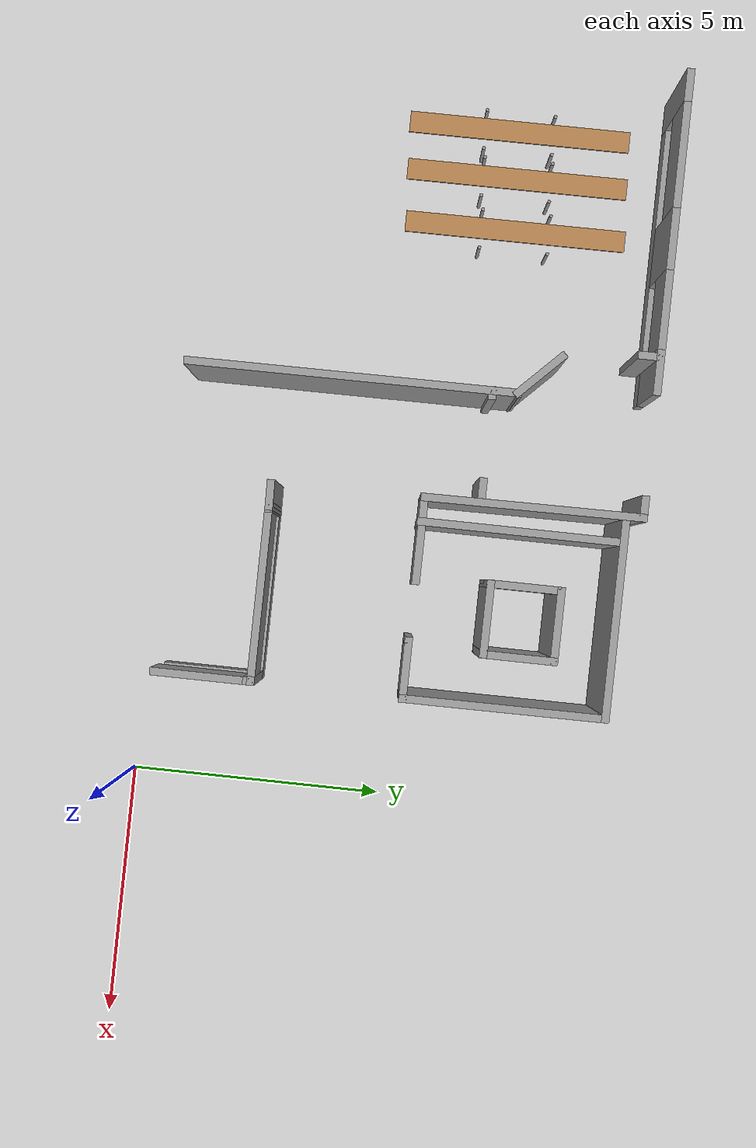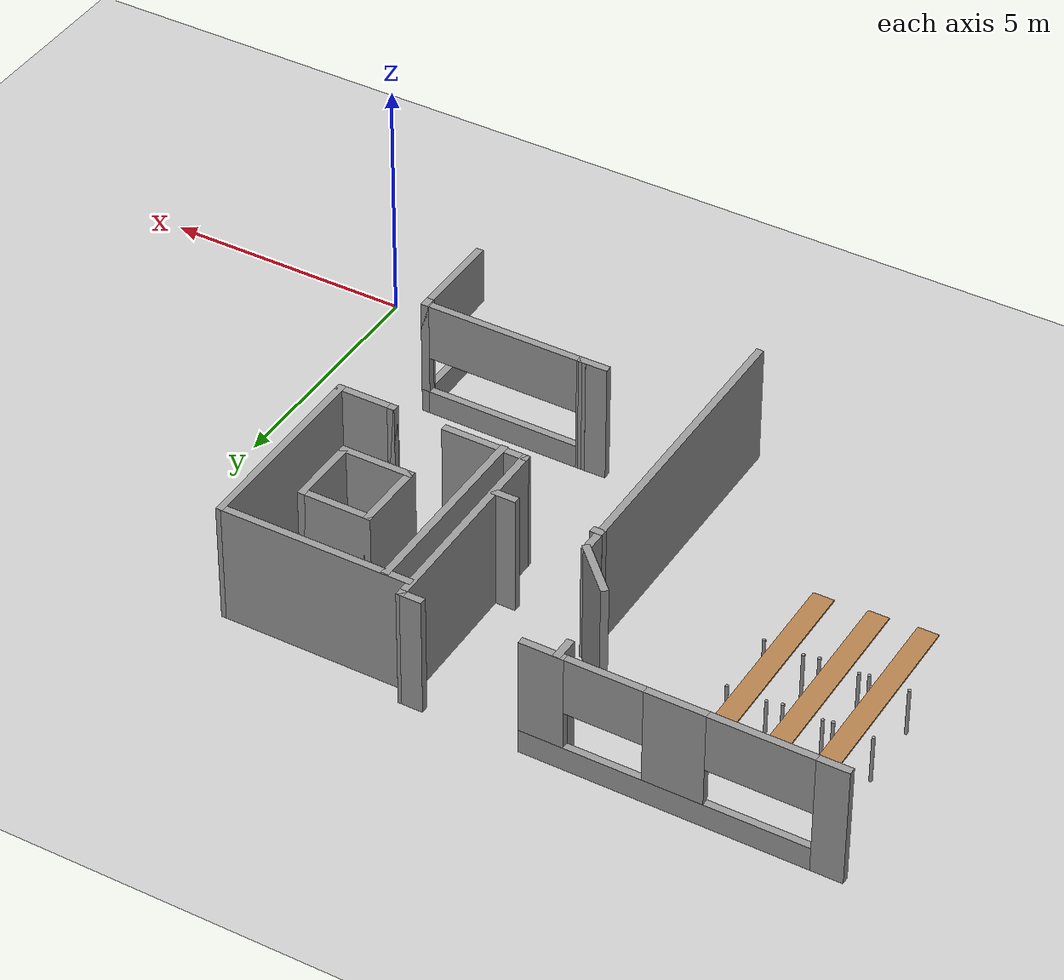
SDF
<sdf version="1.6">
 <world name="default">
  <model name="ground_plane">
   <static>1</static>
   <link name="link">
    <collision name="collision">
     <geometry><plane><normal>0 0 1</normal><size>100 100</size></plane></geometry>
     <surface><friction><ode><mu>100</mu><mu2>50</mu2></ode></friction></surface>
    </collision>
    <visual name="visual">
     <cast_shadows>0</cast_shadows>
     <geometry><plane><normal>0 0 1</normal><size>100 100</size></plane></geometry>
     <material>
      <script><uri>file://media/materials/scripts/gazebo.material</uri><name>Gazebo/Grey</name></script>
     </material>
    </visual>
   </link>
  </model>
  <model name="ca_vignal_1">
   <pose>-8.21048 -6.13752 0 0 -0 0</pose>
   <link name="Wall_18">
    <collision name="Wall_18_Collision">
     <geometry><box><size>0.5 0.15 2.5</size></box></geometry>
     <pose>0 0 1.25 0 -0 0</pose>
    </collision>
    <visual name="Wall_18_Visual">
     <pose>0 0 1.25 0 -0 0</pose>
     <geometry><box><size>0.5 0.15 2.5</size></box></geometry>
     <material>
      <script><uri>file://media/materials/scripts/gazebo.material</uri><name>Gazebo/Grey</name></script>
      <ambient>1 1 1 1</ambient>
     </material>
    </visual>
    <pose>1.99078 15.6193 0 0 -0 0</pose>
   </link>
   <link name="Wall_19">
    <collision name="Wall_19_Collision">
     <geometry><box><size>4.33031 0.15 2.5</size></box></geometry>
     <pose>0 0 1.25 0 -0 0</pose>
    </collision>
    <visual name="Wall_19_Visual">
     <pose>0 0 1.25 0 -0 0</pose>
     <geometry><box><size>4.33031 0.15 2.5</size></box></geometry>
     <material>
      <script><uri>file://media/materials/scripts/gazebo.material</uri><name>Gazebo/Grey</name></script>
      <ambient>1 1 1 1</ambient>
     </material>
    </visual>
    <pose>2.1855 13.5292 0 0 0 -1.56136</pose>
   </link>
   <link name="Wall_2">
    <pose>-3.30164 15.6245 0 0 -0 0</pose>
    <visual name="Wall_2_Visual_0">
     <pose>-2.81084 0 1.25 0 -0 0</pose>
     <geometry><box><size>0.628319 0.15 2.5</size></box></geometry>
     <material>
      <script><uri>file://media/materials/scripts/gazebo.material</uri><name>Gazebo/Grey</name></script>
      <ambient>1 1 1 1</ambient>
     </material>
    </visual>
    <collision name="Wall_2_Collision_0">
     <geometry><box><size>0.628319 0.15 2.5</size></box></geometry>
     <pose>-2.81084 0 1.25 0 -0 0</pose>
    </collision>
    <visual name="Wall_2_Visual_1">
     <pose>0.31416 0 0.25 0 -0 0</pose>
     <geometry><box><size>5.62168 0.15 0.5</size></box></geometry>
     <material>
      <script><uri>file://media/materials/scripts/gazebo.material</uri><name>Gazebo/Grey</name></script>
      <ambient>1 1 1 1</ambient>
     </material>
    </visual>
    <collision name="Wall_2_Collision_1">
     <geometry><box><size>5.62168 0.15 0.5</size></box></geometry>
     <pose>0.31416 0 0.25 0 -0 0</pose>
    </collision>
    <visual name="Wall_2_Visual_2">
     <pose>0.127976 0 1.5 0 -0 0</pose>
     <geometry><box><size>1.18537 0.15 2</size></box></geometry>
     <material>
      <script><uri>file://media/materials/scripts/gazebo.material</uri><name>Gazebo/Grey</name></script>
      <ambient>1 1 1 1</ambient>
     </material>
    </visual>
    <collision name="Wall_2_Collision_2">
     <geometry><box><size>1.18537 0.15 2</size></box></geometry>
     <pose>0.127976 0 1.5 0 -0 0</pose>
    </collision>
    <visual name="Wall_2_Visual_3">
     <pose>2.68462 0 1.5 0 -0 0</pose>
     <geometry><box><size>0.880764 0.15 2</size></box></geometry>
     <material>
      <script><uri>file://media/materials/scripts/gazebo.material</uri><name>Gazebo/Grey</name></script>
      <ambient>1 1 1 1</ambient>
     </material>
    </visual>
    <collision name="Wall_2_Collision_3">
     <geometry><box><size>0.880764 0.15 2</size></box></geometry>
     <pose>2.68462 0 1.5 0 -0 0</pose>
    </collision>
    <visual name="Wall_2_Visual_4">
     <pose>-1.4807 0 1.9 0 -0 0</pose>
     <geometry><box><size>2.03197 0.15 1.2</size></box></geometry>
     <material>
      <script><uri>file://media/materials/scripts/gazebo.material</uri><name>Gazebo/Grey</name></script>
      <ambient>1 1 1 1</ambient>
     </material>
    </visual>
    <collision name="Wall_2_Collision_4">
     <geometry><box><size>2.03197 0.15 1.2</size></box></geometry>
     <pose>-1.4807 0 1.9 0 -0 0</pose>
    </collision>
    <visual name="Wall_2_Visual_5">
     <pose>1.48245 0 1.9 0 -0 0</pose>
     <geometry><box><size>1.52357 0.15 1.2</size></box></geometry>
     <material>
      <script><uri>file://media/materials/scripts/gazebo.material</uri><name>Gazebo/Grey</name></script>
      <ambient>1 1 1 1</ambient>
     </material>
    </visual>
    <collision name="Wall_2_Collision_5">
     <geometry><box><size>1.52357 0.15 1.2</size></box></geometry>
     <pose>1.48245 0 1.9 0 -0 0</pose>
    </collision>
   </link>
   <link name="Wall_20">
    <collision name="Wall_20_Collision">
     <geometry><box><size>1.75 0.15 2.5</size></box></geometry>
     <pose>0 0 1.25 0 -0 0</pose>
    </collision>
    <visual name="Wall_20_Visual">
     <pose>0 0 1.25 0 -0 0</pose>
     <geometry><box><size>1.75 0.15 2.5</size></box></geometry>
     <material>
      <script><uri>file://media/materials/scripts/gazebo.material</uri><name>Gazebo/Grey</name></script>
      <ambient>1 1 1 1</ambient>
     </material>
    </visual>
    <pose>3.00523 11.4392 0 0 -0 0</pose>
   </link>
   <link name="Wall_22">
    <collision name="Wall_22_Collision">
     <geometry><box><size>4 0.15 2.5</size></box></geometry>
     <pose>0 0 1.25 0 -0 0</pose>
    </collision>
    <visual name="Wall_22_Visual">
     <pose>0 0 1.25 0 -0 0</pose>
     <geometry><box><size>4 0.15 2.5</size></box></geometry>
     <material>
      <script><uri>file://media/materials/scripts/gazebo.material</uri><name>Gazebo/Grey</name></script>
      <ambient>1 1 1 1</ambient>
     </material>
    </visual>
    <pose>4.12078 15.2971 0 0 -0 0</pose>
   </link>
   <link name="Wall_23">
    <collision name="Wall_23_Collision">
     <geometry><box><size>4.02639 0.15 2.5</size></box></geometry>
     <pose>0 0 1.25 0 -0 0</pose>
    </collision>
    <visual name="Wall_23_Visual">
     <pose>0 0 1.25 0 -0 0</pose>
     <geometry><box><size>4.02639 0.15 2.5</size></box></geometry>
     <material>
      <script><uri>file://media/materials/scripts/gazebo.material</uri><name>Gazebo/Grey</name></script>
      <ambient>1 1 1 1</ambient>
     </material>
    </visual>
    <pose>6.05235 13.359 0 0 0 -1.5674</pose>
   </link>
   <link name="Wall_24">
    <collision name="Wall_24_Collision">
     <geometry><box><size>1.25 0.15 2.5</size></box></geometry>
     <pose>0 0 1.25 0 -0 0</pose>
    </collision>
    <visual name="Wall_24_Visual">
     <pose>0 0 1.25 0 -0 0</pose>
     <geometry><box><size>1.25 0.15 2.5</size></box></geometry>
     <material>
      <script><uri>file://media/materials/scripts/gazebo.material</uri><name>Gazebo/Grey</name></script>
      <ambient>1 1 1 1</ambient>
     </material>
    </visual>
    <pose>5.50893 11.4208 0 0 -0 3.14159</pose>
   </link>
   <link name="Wall_25">
    <collision name="Wall_25_Collision">
     <geometry><box><size>0.15 0.15 2.5</size></box></geometry>
     <pose>0 0 1.25 0 -0 0</pose>
    </collision>
    <visual name="Wall_25_Visual">
     <pose>0 0 1.25 0 -0 0</pose>
     <geometry><box><size>0.15 0.15 2.5</size></box></geometry>
     <material>
      <script><uri>file://media/materials/scripts/gazebo.material</uri><name>Gazebo/Grey</name></script>
      <ambient>1 1 1 1</ambient>
     </material>
    </visual>
    <pose>4.95893 11.4208 0 0 -0 0</pose>
   </link>
   <link name="Wall_27">
    <collision name="Wall_27_Collision">
     <geometry><box><size>0.5 0.15 2.5</size></box></geometry>
     <pose>0 0 1.25 0 -0 0</pose>
    </collision>
    <visual name="Wall_27_Visual">
     <pose>0 0 1.25 0 -0 0</pose>
     <geometry><box><size>0.5 0.15 2.5</size></box></geometry>
     <material>
      <script><uri>file://media/materials/scripts/gazebo.material</uri><name>Gazebo/Grey</name></script>
      <ambient>1 1 1 1</ambient>
     </material>
    </visual>
    <pose>1.97078 12.5171 0 0 -0 0</pose>
   </link>
   <link name="Wall_30">
    <collision name="Wall_30_Collision">
     <geometry><box><size>4 0.15 2.5</size></box></geometry>
     <pose>0 0 1.25 0 -0 0</pose>
    </collision>
    <visual name="Wall_30_Visual">
     <pose>0 0 1.25 0 -0 0</pose>
     <geometry><box><size>4 0.15 2.5</size></box></geometry>
     <material>
      <script><uri>file://media/materials/scripts/gazebo.material</uri><name>Gazebo/Grey</name></script>
      <ambient>1 1 1 1</ambient>
     </material>
    </visual>
    <pose>2.67311 13.3434 0 0 0 -1.5708</pose>
   </link>
   <link name="Wall_35">
    <collision name="Wall_35_Collision">
     <geometry><box><size>1.5 0.15 2.5</size></box></geometry>
     <pose>0 0 1.25 0 -0 0</pose>
    </collision>
    <visual name="Wall_35_Visual">
     <pose>0 0 1.25 0 -0 0</pose>
     <geometry><box><size>1.5 0.15 2.5</size></box></geometry>
     <material>
      <script><uri>file://media/materials/scripts/gazebo.material</uri><name>Gazebo/Grey</name></script>
      <ambient>1 1 1 1</ambient>
     </material>
    </visual>
    <pose>4.38699 12.8619 0 0 -0 0</pose>
   </link>
   <link name="Wall_36">
    <collision name="Wall_36_Collision">
     <geometry><box><size>1.5 0.15 2.5</size></box></geometry>
     <pose>0 0 1.25 0 -0 0</pose>
    </collision>
    <visual name="Wall_36_Visual">
     <pose>0 0 1.25 0 -0 0</pose>
     <geometry><box><size>1.5 0.15 2.5</size></box></geometry>
     <material>
      <script><uri>file://media/materials/scripts/gazebo.material</uri><name>Gazebo/Grey</name></script>
      <ambient>1 1 1 1</ambient>
     </material>
    </visual>
    <pose>5.06198 13.5369 0 0 -0 1.5708</pose>
   </link>
   <link name="Wall_37">
    <collision name="Wall_37_Collision">
     <geometry><box><size>1.5 0.15 2.5</size></box></geometry>
     <pose>0 0 1.25 0 -0 0</pose>
    </collision>
    <visual name="Wall_37_Visual">
     <pose>0 0 1.25 0 -0 0</pose>
     <geometry><box><size>1.5 0.15 2.5</size></box></geometry>
     <material>
      <script><uri>file://media/materials/scripts/gazebo.material</uri><name>Gazebo/Grey</name></script>
      <ambient>1 1 1 1</ambient>
     </material>
    </visual>
    <pose>4.38699 14.2119 0 0 -0 3.14159</pose>
   </link>
   <link name="Wall_38">
    <collision name="Wall_38_Collision">
     <geometry><box><size>1.5 0.15 2.5</size></box></geometry>
     <pose>0 0 1.25 0 -0 0</pose>
    </collision>
    <visual name="Wall_38_Visual">
     <pose>0 0 1.25 0 -0 0</pose>
     <geometry><box><size>1.5 0.15 2.5</size></box></geometry>
     <material>
      <script><uri>file://media/materials/scripts/gazebo.material</uri><name>Gazebo/Grey</name></script>
      <ambient>1 1 1 1</ambient>
     </material>
    </visual>
    <pose>3.71198 13.5369 0 0 0 -1.5708</pose>
   </link>
   <link name="Wall_4">
    <collision name="Wall_4_Collision">
     <geometry><box><size>1.25 0.15 2.5</size></box></geometry>
     <pose>0 0 1.25 0 -0 0</pose>
    </collision>
    <visual name="Wall_4_Visual">
     <pose>0 0 1.25 0 -0 0</pose>
     <geometry><box><size>1.25 0.15 2.5</size></box></geometry>
     <material>
      <script><uri>file://media/materials/scripts/gazebo.material</uri><name>Gazebo/Grey</name></script>
      <ambient>1 1 1 1</ambient>
     </material>
    </visual>
    <pose>-0.335232 13.3814 0 0 0 -0.785398</pose>
   </link>
   <link name="Wall_40">
    <collision name="Wall_40_Collision">
     <geometry><box><size>0.25 0.15 2.5</size></box></geometry>
     <pose>0 0 1.25 0 -0 0</pose>
    </collision>
    <visual name="Wall_40_Visual">
     <pose>0 0 1.25 0 -0 0</pose>
     <geometry><box><size>0.25 0.15 2.5</size></box></geometry>
     <material>
      <script><uri>file://media/materials/scripts/gazebo.material</uri><name>Gazebo/Grey</name></script>
      <ambient>1 1 1 1</ambient>
     </material>
    </visual>
    <pose>0.104599 12.5173 0 0 -0 0</pose>
   </link>
   <link name="Wall_49">
    <collision name="Wall_49_Collision">
     <geometry><box><size>0.5 0.15 2.5</size></box></geometry>
     <pose>0 0 1.25 0 -0 0</pose>
    </collision>
    <visual name="Wall_49_Visual">
     <pose>0 0 1.25 0 -0 0</pose>
     <geometry><box><size>0.5 0.15 2.5</size></box></geometry>
     <material>
      <script><uri>file://media/materials/scripts/gazebo.material</uri><name>Gazebo/Grey</name></script>
      <ambient>1 1 1 1</ambient>
     </material>
    </visual>
    <pose>-0.910063 15.4437 0 0 0 -1.5708</pose>
   </link>
   <link name="Wall_5">
    <collision name="Wall_5_Collision">
     <geometry><box><size>6.45648 0.15 2.5</size></box></geometry>
     <pose>0 0 1.25 0 -0 0</pose>
    </collision>
    <visual name="Wall_5_Visual">
     <pose>0 0 1.25 0 -0 0</pose>
     <geometry><box><size>6.45648 0.15 2.5</size></box></geometry>
     <material>
      <script><uri>file://media/materials/scripts/gazebo.material</uri><name>Gazebo/Grey</name></script>
      <ambient>1 1 1 1</ambient>
     </material>
    </visual>
    <pose>0.072558 9.83935 0 0 0 -1.56481</pose>
   </link>
   <link name="Wall_55">
    <collision name="Wall_55_Collision">
     <geometry><box><size>0.585889 0.15 2.5</size></box></geometry>
     <pose>0 0 1.25 0 -0 0</pose>
    </collision>
    <visual name="Wall_55_Visual">
     <pose>0 0 1.25 0 -0 0</pose>
     <geometry><box><size>0.585889 0.15 2.5</size></box></geometry>
     <material>
      <script><uri>file://media/materials/scripts/gazebo.material</uri><name>Gazebo/Grey</name></script>
      <ambient>1 1 1 1</ambient>
     </material>
    </visual>
    <pose>2.47189 8.50823 0 0 0 -3.12351</pose>
   </link>
   <link name="Wall_58">
    <pose>4.3648 8.51217 0 0 -0 0</pose>
    <visual name="Wall_58_Visual_0">
     <pose>-1.65572 0 1.25 0 -0 0</pose>
     <geometry><box><size>0.18855 0.15 2.5</size></box></geometry>
     <material>
      <script><uri>file://media/materials/scripts/gazebo.material</uri><name>Gazebo/Grey</name></script>
      <ambient>1 1 1 1</ambient>
     </material>
    </visual>
    <collision name="Wall_58_Collision_0">
     <geometry><box><size>0.18855 0.15 2.5</size></box></geometry>
     <pose>-1.65572 0 1.25 0 -0 0</pose>
    </collision>
    <visual name="Wall_58_Visual_1">
     <pose>0.094275 0 0.25 0 -0 0</pose>
     <geometry><box><size>3.31145 0.15 0.5</size></box></geometry>
     <material>
      <script><uri>file://media/materials/scripts/gazebo.material</uri><name>Gazebo/Grey</name></script>
      <ambient>1 1 1 1</ambient>
     </material>
    </visual>
    <collision name="Wall_58_Collision_1">
     <geometry><box><size>3.31145 0.15 0.5</size></box></geometry>
     <pose>0.094275 0 0.25 0 -0 0</pose>
    </collision>
    <visual name="Wall_58_Visual_2">
     <pose>1.66427 0 1.5 0 -0 0</pose>
     <geometry><box><size>0.17145 0.15 2</size></box></geometry>
     <material>
      <script><uri>file://media/materials/scripts/gazebo.material</uri><name>Gazebo/Grey</name></script>
      <ambient>1 1 1 1</ambient>
     </material>
    </visual>
    <collision name="Wall_58_Collision_2">
     <geometry><box><size>0.17145 0.15 2</size></box></geometry>
     <pose>1.66427 0 1.5 0 -0 0</pose>
    </collision>
    <visual name="Wall_58_Visual_3">
     <pose>0.00855 0 1.9 0 -0 0</pose>
     <geometry><box><size>3.14 0.15 1.2</size></box></geometry>
     <material>
      <script><uri>file://media/materials/scripts/gazebo.material</uri><name>Gazebo/Grey</name></script>
      <ambient>1 1 1 1</ambient>
     </material>
    </visual>
    <collision name="Wall_58_Collision_3">
     <geometry><box><size>3.14 0.15 1.2</size></box></geometry>
     <pose>0.00855 0 1.9 0 -0 0</pose>
    </collision>
   </link>
   <link name="Wall_59">
    <pose>6.0398 7.58717 0 0 0 -1.5708</pose>
    <visual name="Wall_59_Visual_0">
     <pose>-0.886716 0 1.25 0 -0 0</pose>
     <geometry><box><size>0.226567 0.15 2.5</size></box></geometry>
     <material>
      <script><uri>file://media/materials/scripts/gazebo.material</uri><name>Gazebo/Grey</name></script>
      <ambient>1 1 1 1</ambient>
     </material>
    </visual>
    <collision name="Wall_59_Collision_0">
     <geometry><box><size>0.226567 0.15 2.5</size></box></geometry>
     <pose>-0.886716 0 1.25 0 -0 0</pose>
    </collision>
    <visual name="Wall_59_Visual_1">
     <pose>0.113284 0 0.25 0 -0 0</pose>
     <geometry><box><size>1.77343 0.15 0.5</size></box></geometry>
     <material>
      <script><uri>file://media/materials/scripts/gazebo.material</uri><name>Gazebo/Grey</name></script>
      <ambient>1 1 1 1</ambient>
     </material>
    </visual>
    <collision name="Wall_59_Collision_1">
     <geometry><box><size>1.77343 0.15 0.5</size></box></geometry>
     <pose>0.113284 0 0.25 0 -0 0</pose>
    </collision>
    <visual name="Wall_59_Visual_2">
     <pose>0.113284 0 1.9 0 -0 0</pose>
     <geometry><box><size>1.77343 0.15 1.2</size></box></geometry>
     <material>
      <script><uri>file://media/materials/scripts/gazebo.material</uri><name>Gazebo/Grey</name></script>
      <ambient>1 1 1 1</ambient>
     </material>
    </visual>
    <collision name="Wall_59_Collision_2">
     <geometry><box><size>1.77343 0.15 1.2</size></box></geometry>
     <pose>0.113284 0 1.9 0 -0 0</pose>
    </collision>
   </link>
   <static>1</static>
  </model>
  <model name="tablesclass_clone_12">
   <link name="link">
    <inertial>
     <inertia><ixx>0</ixx><ixy>0</ixy><ixz>0</ixz><iyy>0</iyy><iyz>0</iyz><izz>0</izz></inertia>
     <mass>1.73923</mass>
    </inertial>
    <visual name="front_right_leg">
     <pose>0.68 -0.38 0.5 0 -0 0</pose>
     <geometry><cylinder><radius>0.0324505</radius><length>1</length></cylinder></geometry>
     <material>
      <script><uri>file://media/materials/scripts/gazebo.material</uri><name>Gazebo/Grey</name></script>
      <ambient>0.3 0.3 0.3 1</ambient>
      <diffuse>0.7 0.7 0.7 1</diffuse>
      <specular>0.01 0.01 0.01 1</specular>
      <emissive>0 0 0 1</emissive>
     </material>
    </visual>
    <visual name="back_left_leg">
     <pose>-0.68 0.38 0.5 0 -0 0</pose>
     <geometry><cylinder><radius>0.0324505</radius><length>1</length></cylinder></geometry>
     <material>
      <script><uri>file://media/materials/scripts/gazebo.material</uri><name>Gazebo/Grey</name></script>
      <ambient>0.3 0.3 0.3 1</ambient>
      <diffuse>0.7 0.7 0.7 1</diffuse>
      <specular>0.01 0.01 0.01 1</specular>
      <emissive>0 0 0 1</emissive>
     </material>
    </visual>
    <visual name="front_left_leg">
     <pose>0.68 0.38 0.5 0 -0 0</pose>
     <geometry><cylinder><radius>0.0324505</radius><length>1</length></cylinder></geometry>
     <material>
      <script><uri>file://media/materials/scripts/gazebo.material</uri><name>Gazebo/Grey</name></script>
      <ambient>0.3 0.3 0.3 1</ambient>
      <diffuse>0.7 0.7 0.7 1</diffuse>
      <specular>0.01 0.01 0.01 1</specular>
      <emissive>0 0 0 1</emissive>
     </material>
    </visual>
    <visual name="visual1">
     <pose>0 0 1 0 -0 0</pose>
     <geometry><box><size>4.38513 0.412326 0.04</size></box></geometry>
     <material>
      <script><uri>file://media/materials/scripts/gazebo.material</uri><name>Gazebo/Wood</name></script>
      <ambient>1 1 1 1</ambient>
      <diffuse>1 1 1 1</diffuse>
      <specular>0.2 0.2 0.2 1</specular>
      <emissive>0 0 0 1</emissive>
     </material>
    </visual>
    <visual name="back_right_leg">
     <pose>-0.68 -0.38 0.5 0 -0 0</pose>
     <geometry><cylinder><radius>0.0324505</radius><length>1</length></cylinder></geometry>
     <material>
      <script><uri>file://media/materials/scripts/gazebo.material</uri><name>Gazebo/Grey</name></script>
      <ambient>0.3 0.3 0.3 1</ambient>
      <diffuse>0.7 0.7 0.7 1</diffuse>
      <specular>0.01 0.01 0.01 1</specular>
      <emissive>0 0 0 1</emissive>
     </material>
    </visual>
    <collision name="front_left_leg">
     <pose>0.68 0.38 0.5 0 -0 0</pose>
     <geometry><cylinder><radius>0.03245</radius><length>1</length></cylinder></geometry>
     <surface>
      <friction>
       <ode><mu>1</mu><mu2>1</mu2><fdir1>0 0 0</fdir1><slip1>0</slip1><slip2>0</slip2></ode>
       <torsional>
        <coefficient>1</coefficient>
        <patch_radius>0</patch_radius>
        <surface_radius>0</surface_radius>
        <use_patch_radius>1</use_patch_radius>
        <ode><slip>0</slip></ode>
       </torsional>
      </friction>
      <bounce><restitution_coefficient>0</restitution_coefficient><threshold>1e+06</threshold></bounce>
      <contact>
       <collide_without_contact>0</collide_without_contact>
       <collide_without_contact_bitmask>1</collide_without_contact_bitmask>
       <collide_bitmask>1</collide_bitmask>
       <ode>
        <soft_cfm>0</soft_cfm>
        <soft_erp>0.2</soft_erp>
        <kp>1e+13</kp>
        <kd>1</kd>
        <max_vel>0.01</max_vel>
        <min_depth>0</min_depth>
       </ode>
       <bullet>
        <split_impulse>1</split_impulse>
        <split_impulse_penetration_threshold>-0.01</split_impulse_penetration_threshold>
        <soft_cfm>0</soft_cfm>
        <soft_erp>0.2</soft_erp>
        <kp>1e+13</kp>
        <kd>1</kd>
       </bullet>
      </contact>
     </surface>
    </collision>
    <collision name="front_right_leg">
     <pose>0.68 -0.38 0.5 0 -0 0</pose>
     <geometry><cylinder><radius>0.03245</radius><length>1</length></cylinder></geometry>
     <surface>
      <friction>
       <ode><mu>1</mu><mu2>1</mu2><fdir1>0 0 0</fdir1><slip1>0</slip1><slip2>0</slip2></ode>
       <torsional>
        <coefficient>1</coefficient>
        <patch_radius>0</patch_radius>
        <surface_radius>0</surface_radius>
        <use_patch_radius>1</use_patch_radius>
        <ode><slip>0</slip></ode>
       </torsional>
      </friction>
      <bounce><restitution_coefficient>0</restitution_coefficient><threshold>1e+06</threshold></bounce>
      <contact>
       <collide_without_contact>0</collide_without_contact>
       <collide_without_contact_bitmask>1</collide_without_contact_bitmask>
       <collide_bitmask>1</collide_bitmask>
       <ode>
        <soft_cfm>0</soft_cfm>
        <soft_erp>0.2</soft_erp>
        <kp>1e+13</kp>
        <kd>1</kd>
        <max_vel>0.01</max_vel>
        <min_depth>0</min_depth>
       </ode>
       <bullet>
        <split_impulse>1</split_impulse>
        <split_impulse_penetration_threshold>-0.01</split_impulse_penetration_threshold>
        <soft_cfm>0</soft_cfm>
        <soft_erp>0.2</soft_erp>
        <kp>1e+13</kp>
        <kd>1</kd>
       </bullet>
      </contact>
     </surface>
    </collision>
    <collision name="back_left_leg">
     <pose>-0.68 0.38 0.5 0 -0 0</pose>
     <geometry><cylinder><radius>0.03245</radius><length>1</length></cylinder></geometry>
     <surface>
      <friction>
       <ode><mu>1</mu><mu2>1</mu2><fdir1>0 0 0</fdir1><slip1>0</slip1><slip2>0</slip2></ode>
       <torsional>
        <coefficient>1</coefficient>
        <patch_radius>0</patch_radius>
        <surface_radius>0</surface_radius>
        <use_patch_radius>1</use_patch_radius>
        <ode><slip>0</slip></ode>
       </torsional>
      </friction>
      <bounce><restitution_coefficient>0</restitution_coefficient><threshold>1e+06</threshold></bounce>
      <contact>
       <collide_without_contact>0</collide_without_contact>
       <collide_without_contact_bitmask>1</collide_without_contact_bitmask>
       <collide_bitmask>1</collide_bitmask>
       <ode>
        <soft_cfm>0</soft_cfm>
        <soft_erp>0.2</soft_erp>
        <kp>1e+13</kp>
        <kd>1</kd>
        <max_vel>0.01</max_vel>
        <min_depth>0</min_depth>
       </ode>
       <bullet>
        <split_impulse>1</split_impulse>
        <split_impulse_penetration_threshold>-0.01</split_impulse_penetration_threshold>
        <soft_cfm>0</soft_cfm>
        <soft_erp>0.2</soft_erp>
        <kp>1e+13</kp>
        <kd>1</kd>
       </bullet>
      </contact>
     </surface>
    </collision>
    <collision name="back_right_leg">
     <pose>-0.68 -0.38 0.5 0 -0 0</pose>
     <geometry><cylinder><radius>0.03245</radius><length>1</length></cylinder></geometry>
     <surface>
      <friction>
       <ode><mu>1</mu><mu2>1</mu2><fdir1>0 0 0</fdir1><slip1>0</slip1><slip2>0</slip2></ode>
       <torsional>
        <coefficient>1</coefficient>
        <patch_radius>0</patch_radius>
        <surface_radius>0</surface_radius>
        <use_patch_radius>1</use_patch_radius>
        <ode><slip>0</slip></ode>
       </torsional>
      </friction>
      <bounce><restitution_coefficient>0</restitution_coefficient><threshold>1e+06</threshold></bounce>
      <contact>
       <collide_without_contact>0</collide_without_contact>
       <collide_without_contact_bitmask>1</collide_without_contact_bitmask>
       <collide_bitmask>1</collide_bitmask>
       <ode>
        <soft_cfm>0</soft_cfm>
        <soft_erp>0.2</soft_erp>
        <kp>1e+13</kp>
        <kd>1</kd>
        <max_vel>0.01</max_vel>
        <min_depth>0</min_depth>
       </ode>
       <bullet>
        <split_impulse>1</split_impulse>
        <split_impulse_penetration_threshold>-0.01</split_impulse_penetration_threshold>
        <soft_cfm>0</soft_cfm>
        <soft_erp>0.2</soft_erp>
        <kp>1e+13</kp>
        <kd>1</kd>
       </bullet>
      </contact>
     </surface>
    </collision>
    <collision name="surface">
     <pose>0 0 1 0 -0 0</pose>
     <geometry><box><size>4.69836 0.412326 0.03</size></box></geometry>
     <surface>
      <friction>
       <ode><mu>0.6</mu><mu2>0.6</mu2><fdir1>0 0 0</fdir1><slip1>0</slip1><slip2>0</slip2></ode>
       <torsional>
        <coefficient>1</coefficient>
        <patch_radius>0</patch_radius>
        <surface_radius>0</surface_radius>
        <use_patch_radius>1</use_patch_radius>
        <ode><slip>0</slip></ode>
       </torsional>
      </friction>
      <bounce><restitution_coefficient>0</restitution_coefficient><threshold>1e+06</threshold></bounce>
      <contact>
       <collide_without_contact>0</collide_without_contact>
       <collide_without_contact_bitmask>1</collide_without_contact_bitmask>
       <collide_bitmask>1</collide_bitmask>
       <ode>
        <soft_cfm>0</soft_cfm>
        <soft_erp>0.2</soft_erp>
        <kp>1e+13</kp>
        <kd>1</kd>
        <max_vel>0.01</max_vel>
        <min_depth>0</min_depth>
       </ode>
       <bullet>
        <split_impulse>1</split_impulse>
        <split_impulse_penetration_threshold>-0.01</split_impulse_penetration_threshold>
        <soft_cfm>0</soft_cfm>
        <soft_erp>0.2</soft_erp>
        <kp>1e+13</kp>
        <kd>1</kd>
       </bullet>
      </contact>
     </surface>
    </collision>
   </link>
   <static>0</static>
   <pose>-13.5175 6.44976 -6e-06 -0 3e-06 -1.56437</pose>
  </model>
  <model name="tablesclass_clone_13">
   <link name="link">
    <inertial>
     <inertia><ixx>0</ixx><ixy>0</ixy><ixz>0</ixz><iyy>0</iyy><iyz>0</iyz><izz>0</izz></inertia>
     <mass>1.73923</mass>
    </inertial>
    <visual name="front_right_leg">
     <pose>0.68 -0.38 0.5 0 -0 0</pose>
     <geometry><cylinder><radius>0.0324505</radius><length>1</length></cylinder></geometry>
     <material>
      <script><uri>file://media/materials/scripts/gazebo.material</uri><name>Gazebo/Grey</name></script>
      <ambient>0.3 0.3 0.3 1</ambient>
      <diffuse>0.7 0.7 0.7 1</diffuse>
      <specular>0.01 0.01 0.01 1</specular>
      <emissive>0 0 0 1</emissive>
     </material>
    </visual>
    <visual name="back_left_leg">
     <pose>-0.68 0.38 0.5 0 -0 0</pose>
     <geometry><cylinder><radius>0.0324505</radius><length>1</length></cylinder></geometry>
     <material>
      <script><uri>file://media/materials/scripts/gazebo.material</uri><name>Gazebo/Grey</name></script>
      <ambient>0.3 0.3 0.3 1</ambient>
      <diffuse>0.7 0.7 0.7 1</diffuse>
      <specular>0.01 0.01 0.01 1</specular>
      <emissive>0 0 0 1</emissive>
     </material>
    </visual>
    <visual name="front_left_leg">
     <pose>0.68 0.38 0.5 0 -0 0</pose>
     <geometry><cylinder><radius>0.0324505</radius><length>1</length></cylinder></geometry>
     <material>
      <script><uri>file://media/materials/scripts/gazebo.material</uri><name>Gazebo/Grey</name></script>
      <ambient>0.3 0.3 0.3 1</ambient>
      <diffuse>0.7 0.7 0.7 1</diffuse>
      <specular>0.01 0.01 0.01 1</specular>
      <emissive>0 0 0 1</emissive>
     </material>
    </visual>
    <visual name="visual1">
     <pose>0 0 1 0 -0 0</pose>
     <geometry><box><size>4.38513 0.412326 0.04</size></box></geometry>
     <material>
      <script><uri>file://media/materials/scripts/gazebo.material</uri><name>Gazebo/Wood</name></script>
      <ambient>1 1 1 1</ambient>
      <diffuse>1 1 1 1</diffuse>
      <specular>0.2 0.2 0.2 1</specular>
      <emissive>0 0 0 1</emissive>
     </material>
    </visual>
    <visual name="back_right_leg">
     <pose>-0.68 -0.38 0.5 0 -0 0</pose>
     <geometry><cylinder><radius>0.0324505</radius><length>1</length></cylinder></geometry>
     <material>
      <script><uri>file://media/materials/scripts/gazebo.material</uri><name>Gazebo/Grey</name></script>
      <ambient>0.3 0.3 0.3 1</ambient>
      <diffuse>0.7 0.7 0.7 1</diffuse>
      <specular>0.01 0.01 0.01 1</specular>
      <emissive>0 0 0 1</emissive>
     </material>
    </visual>
    <collision name="front_left_leg">
     <pose>0.68 0.38 0.5 0 -0 0</pose>
     <geometry><cylinder><radius>0.03245</radius><length>1</length></cylinder></geometry>
     <surface>
      <friction>
       <ode><mu>1</mu><mu2>1</mu2><fdir1>0 0 0</fdir1><slip1>0</slip1><slip2>0</slip2></ode>
       <torsional>
        <coefficient>1</coefficient>
        <patch_radius>0</patch_radius>
        <surface_radius>0</surface_radius>
        <use_patch_radius>1</use_patch_radius>
        <ode><slip>0</slip></ode>
       </torsional>
      </friction>
      <bounce><restitution_coefficient>0</restitution_coefficient><threshold>1e+06</threshold></bounce>
      <contact>
       <collide_without_contact>0</collide_without_contact>
       <collide_without_contact_bitmask>1</collide_without_contact_bitmask>
       <collide_bitmask>1</collide_bitmask>
       <ode>
        <soft_cfm>0</soft_cfm>
        <soft_erp>0.2</soft_erp>
        <kp>1e+13</kp>
        <kd>1</kd>
        <max_vel>0.01</max_vel>
        <min_depth>0</min_depth>
       </ode>
       <bullet>
        <split_impulse>1</split_impulse>
        <split_impulse_penetration_threshold>-0.01</split_impulse_penetration_threshold>
        <soft_cfm>0</soft_cfm>
        <soft_erp>0.2</soft_erp>
        <kp>1e+13</kp>
        <kd>1</kd>
       </bullet>
      </contact>
     </surface>
    </collision>
    <collision name="front_right_leg">
     <pose>0.68 -0.38 0.5 0 -0 0</pose>
     <geometry><cylinder><radius>0.03245</radius><length>1</length></cylinder></geometry>
     <surface>
      <friction>
       <ode><mu>1</mu><mu2>1</mu2><fdir1>0 0 0</fdir1><slip1>0</slip1><slip2>0</slip2></ode>
       <torsional>
        <coefficient>1</coefficient>
        <patch_radius>0</patch_radius>
        <surface_radius>0</surface_radius>
        <use_patch_radius>1</use_patch_radius>
        <ode><slip>0</slip></ode>
       </torsional>
      </friction>
      <bounce><restitution_coefficient>0</restitution_coefficient><threshold>1e+06</threshold></bounce>
      <contact>
       <collide_without_contact>0</collide_without_contact>
       <collide_without_contact_bitmask>1</collide_without_contact_bitmask>
       <collide_bitmask>1</collide_bitmask>
       <ode>
        <soft_cfm>0</soft_cfm>
        <soft_erp>0.2</soft_erp>
        <kp>1e+13</kp>
        <kd>1</kd>
        <max_vel>0.01</max_vel>
        <min_depth>0</min_depth>
       </ode>
       <bullet>
        <split_impulse>1</split_impulse>
        <split_impulse_penetration_threshold>-0.01</split_impulse_penetration_threshold>
        <soft_cfm>0</soft_cfm>
        <soft_erp>0.2</soft_erp>
        <kp>1e+13</kp>
        <kd>1</kd>
       </bullet>
      </contact>
     </surface>
    </collision>
    <collision name="back_left_leg">
     <pose>-0.68 0.38 0.5 0 -0 0</pose>
     <geometry><cylinder><radius>0.03245</radius><length>1</length></cylinder></geometry>
     <surface>
      <friction>
       <ode><mu>1</mu><mu2>1</mu2><fdir1>0 0 0</fdir1><slip1>0</slip1><slip2>0</slip2></ode>
       <torsional>
        <coefficient>1</coefficient>
        <patch_radius>0</patch_radius>
        <surface_radius>0</surface_radius>
        <use_patch_radius>1</use_patch_radius>
        <ode><slip>0</slip></ode>
       </torsional>
      </friction>
      <bounce><restitution_coefficient>0</restitution_coefficient><threshold>1e+06</threshold></bounce>
      <contact>
       <collide_without_contact>0</collide_without_contact>
       <collide_without_contact_bitmask>1</collide_without_contact_bitmask>
       <collide_bitmask>1</collide_bitmask>
       <ode>
        <soft_cfm>0</soft_cfm>
        <soft_erp>0.2</soft_erp>
        <kp>1e+13</kp>
        <kd>1</kd>
        <max_vel>0.01</max_vel>
        <min_depth>0</min_depth>
       </ode>
       <bullet>
        <split_impulse>1</split_impulse>
        <split_impulse_penetration_threshold>-0.01</split_impulse_penetration_threshold>
        <soft_cfm>0</soft_cfm>
        <soft_erp>0.2</soft_erp>
        <kp>1e+13</kp>
        <kd>1</kd>
       </bullet>
      </contact>
     </surface>
    </collision>
    <collision name="back_right_leg">
     <pose>-0.68 -0.38 0.5 0 -0 0</pose>
     <geometry><cylinder><radius>0.03245</radius><length>1</length></cylinder></geometry>
     <surface>
      <friction>
       <ode><mu>1</mu><mu2>1</mu2><fdir1>0 0 0</fdir1><slip1>0</slip1><slip2>0</slip2></ode>
       <torsional>
        <coefficient>1</coefficient>
        <patch_radius>0</patch_radius>
        <surface_radius>0</surface_radius>
        <use_patch_radius>1</use_patch_radius>
        <ode><slip>0</slip></ode>
       </torsional>
      </friction>
      <bounce><restitution_coefficient>0</restitution_coefficient><threshold>1e+06</threshold></bounce>
      <contact>
       <collide_without_contact>0</collide_without_contact>
       <collide_without_contact_bitmask>1</collide_without_contact_bitmask>
       <collide_bitmask>1</collide_bitmask>
       <ode>
        <soft_cfm>0</soft_cfm>
        <soft_erp>0.2</soft_erp>
        <kp>1e+13</kp>
        <kd>1</kd>
        <max_vel>0.01</max_vel>
        <min_depth>0</min_depth>
       </ode>
       <bullet>
        <split_impulse>1</split_impulse>
        <split_impulse_penetration_threshold>-0.01</split_impulse_penetration_threshold>
        <soft_cfm>0</soft_cfm>
        <soft_erp>0.2</soft_erp>
        <kp>1e+13</kp>
        <kd>1</kd>
       </bullet>
      </contact>
     </surface>
    </collision>
    <collision name="surface">
     <pose>0 0 1 0 -0 0</pose>
     <geometry><box><size>4.69836 0.412326 0.03</size></box></geometry>
     <surface>
      <friction>
       <ode><mu>0.6</mu><mu2>0.6</mu2><fdir1>0 0 0</fdir1><slip1>0</slip1><slip2>0</slip2></ode>
       <torsional>
        <coefficient>1</coefficient>
        <patch_radius>0</patch_radius>
        <surface_radius>0</surface_radius>
        <use_patch_radius>1</use_patch_radius>
        <ode><slip>0</slip></ode>
       </torsional>
      </friction>
      <bounce><restitution_coefficient>0</restitution_coefficient><threshold>1e+06</threshold></bounce>
      <contact>
       <collide_without_contact>0</collide_without_contact>
       <collide_without_contact_bitmask>1</collide_without_contact_bitmask>
       <collide_bitmask>1</collide_bitmask>
       <ode>
        <soft_cfm>0</soft_cfm>
        <soft_erp>0.2</soft_erp>
        <kp>1e+13</kp>
        <kd>1</kd>
        <max_vel>0.01</max_vel>
        <min_depth>0</min_depth>
       </ode>
       <bullet>
        <split_impulse>1</split_impulse>
        <split_impulse_penetration_threshold>-0.01</split_impulse_penetration_threshold>
        <soft_cfm>0</soft_cfm>
        <soft_erp>0.2</soft_erp>
        <kp>1e+13</kp>
        <kd>1</kd>
       </bullet>
      </contact>
     </surface>
    </collision>
   </link>
   <static>0</static>
   <pose>-12.5789 6.49562 -4e-06 0 -3e-06 -1.56433</pose>
  </model>
  <model name="tablesclass_clone_14">
   <link name="link">
    <inertial>
     <inertia><ixx>0</ixx><ixy>0</ixy><ixz>0</ixz><iyy>0</iyy><iyz>0</iyz><izz>0</izz></inertia>
     <mass>1.73923</mass>
    </inertial>
    <visual name="front_right_leg">
     <pose>0.68 -0.38 0.5 0 -0 0</pose>
     <geometry><cylinder><radius>0.0324505</radius><length>1</length></cylinder></geometry>
     <material>
      <script><uri>file://media/materials/scripts/gazebo.material</uri><name>Gazebo/Grey</name></script>
      <ambient>0.3 0.3 0.3 1</ambient>
      <diffuse>0.7 0.7 0.7 1</diffuse>
      <specular>0.01 0.01 0.01 1</specular>
      <emissive>0 0 0 1</emissive>
     </material>
    </visual>
    <visual name="back_left_leg">
     <pose>-0.68 0.38 0.5 0 -0 0</pose>
     <geometry><cylinder><radius>0.0324505</radius><length>1</length></cylinder></geometry>
     <material>
      <script><uri>file://media/materials/scripts/gazebo.material</uri><name>Gazebo/Grey</name></script>
      <ambient>0.3 0.3 0.3 1</ambient>
      <diffuse>0.7 0.7 0.7 1</diffuse>
      <specular>0.01 0.01 0.01 1</specular>
      <emissive>0 0 0 1</emissive>
     </material>
    </visual>
    <visual name="front_left_leg">
     <pose>0.68 0.38 0.5 0 -0 0</pose>
     <geometry><cylinder><radius>0.0324505</radius><length>1</length></cylinder></geometry>
     <material>
      <script><uri>file://media/materials/scripts/gazebo.material</uri><name>Gazebo/Grey</name></script>
      <ambient>0.3 0.3 0.3 1</ambient>
      <diffuse>0.7 0.7 0.7 1</diffuse>
      <specular>0.01 0.01 0.01 1</specular>
      <emissive>0 0 0 1</emissive>
     </material>
    </visual>
    <visual name="visual1">
     <pose>0 0 1 0 -0 0</pose>
     <geometry><box><size>4.38513 0.412326 0.04</size></box></geometry>
     <material>
      <script><uri>file://media/materials/scripts/gazebo.material</uri><name>Gazebo/Wood</name></script>
      <ambient>1 1 1 1</ambient>
      <diffuse>1 1 1 1</diffuse>
      <specular>0.2 0.2 0.2 1</specular>
      <emissive>0 0 0 1</emissive>
     </material>
    </visual>
    <visual name="back_right_leg">
     <pose>-0.68 -0.38 0.5 0 -0 0</pose>
     <geometry><cylinder><radius>0.0324505</radius><length>1</length></cylinder></geometry>
     <material>
      <script><uri>file://media/materials/scripts/gazebo.material</uri><name>Gazebo/Grey</name></script>
      <ambient>0.3 0.3 0.3 1</ambient>
      <diffuse>0.7 0.7 0.7 1</diffuse>
      <specular>0.01 0.01 0.01 1</specular>
      <emissive>0 0 0 1</emissive>
     </material>
    </visual>
    <collision name="front_left_leg">
     <pose>0.68 0.38 0.5 0 -0 0</pose>
     <geometry><cylinder><radius>0.03245</radius><length>1</length></cylinder></geometry>
     <surface>
      <friction>
       <ode><mu>1</mu><mu2>1</mu2><fdir1>0 0 0</fdir1><slip1>0</slip1><slip2>0</slip2></ode>
       <torsional>
        <coefficient>1</coefficient>
        <patch_radius>0</patch_radius>
        <surface_radius>0</surface_radius>
        <use_patch_radius>1</use_patch_radius>
        <ode><slip>0</slip></ode>
       </torsional>
      </friction>
      <bounce><restitution_coefficient>0</restitution_coefficient><threshold>1e+06</threshold></bounce>
      <contact>
       <collide_without_contact>0</collide_without_contact>
       <collide_without_contact_bitmask>1</collide_without_contact_bitmask>
       <collide_bitmask>1</collide_bitmask>
       <ode>
        <soft_cfm>0</soft_cfm>
        <soft_erp>0.2</soft_erp>
        <kp>1e+13</kp>
        <kd>1</kd>
        <max_vel>0.01</max_vel>
        <min_depth>0</min_depth>
       </ode>
       <bullet>
        <split_impulse>1</split_impulse>
        <split_impulse_penetration_threshold>-0.01</split_impulse_penetration_threshold>
        <soft_cfm>0</soft_cfm>
        <soft_erp>0.2</soft_erp>
        <kp>1e+13</kp>
        <kd>1</kd>
       </bullet>
      </contact>
     </surface>
    </collision>
    <collision name="front_right_leg">
     <pose>0.68 -0.38 0.5 0 -0 0</pose>
     <geometry><cylinder><radius>0.03245</radius><length>1</length></cylinder></geometry>
     <surface>
      <friction>
       <ode><mu>1</mu><mu2>1</mu2><fdir1>0 0 0</fdir1><slip1>0</slip1><slip2>0</slip2></ode>
       <torsional>
        <coefficient>1</coefficient>
        <patch_radius>0</patch_radius>
        <surface_radius>0</surface_radius>
        <use_patch_radius>1</use_patch_radius>
        <ode><slip>0</slip></ode>
       </torsional>
      </friction>
      <bounce><restitution_coefficient>0</restitution_coefficient><threshold>1e+06</threshold></bounce>
      <contact>
       <collide_without_contact>0</collide_without_contact>
       <collide_without_contact_bitmask>1</collide_without_contact_bitmask>
       <collide_bitmask>1</collide_bitmask>
       <ode>
        <soft_cfm>0</soft_cfm>
        <soft_erp>0.2</soft_erp>
        <kp>1e+13</kp>
        <kd>1</kd>
        <max_vel>0.01</max_vel>
        <min_depth>0</min_depth>
       </ode>
       <bullet>
        <split_impulse>1</split_impulse>
        <split_impulse_penetration_threshold>-0.01</split_impulse_penetration_threshold>
        <soft_cfm>0</soft_cfm>
        <soft_erp>0.2</soft_erp>
        <kp>1e+13</kp>
        <kd>1</kd>
       </bullet>
      </contact>
     </surface>
    </collision>
    <collision name="back_left_leg">
     <pose>-0.68 0.38 0.5 0 -0 0</pose>
     <geometry><cylinder><radius>0.03245</radius><length>1</length></cylinder></geometry>
     <surface>
      <friction>
       <ode><mu>1</mu><mu2>1</mu2><fdir1>0 0 0</fdir1><slip1>0</slip1><slip2>0</slip2></ode>
       <torsional>
        <coefficient>1</coefficient>
        <patch_radius>0</patch_radius>
        <surface_radius>0</surface_radius>
        <use_patch_radius>1</use_patch_radius>
        <ode><slip>0</slip></ode>
       </torsional>
      </friction>
      <bounce><restitution_coefficient>0</restitution_coefficient><threshold>1e+06</threshold></bounce>
      <contact>
       <collide_without_contact>0</collide_without_contact>
       <collide_without_contact_bitmask>1</collide_without_contact_bitmask>
       <collide_bitmask>1</collide_bitmask>
       <ode>
        <soft_cfm>0</soft_cfm>
        <soft_erp>0.2</soft_erp>
        <kp>1e+13</kp>
        <kd>1</kd>
        <max_vel>0.01</max_vel>
        <min_depth>0</min_depth>
       </ode>
       <bullet>
        <split_impulse>1</split_impulse>
        <split_impulse_penetration_threshold>-0.01</split_impulse_penetration_threshold>
        <soft_cfm>0</soft_cfm>
        <soft_erp>0.2</soft_erp>
        <kp>1e+13</kp>
        <kd>1</kd>
       </bullet>
      </contact>
     </surface>
    </collision>
    <collision name="back_right_leg">
     <pose>-0.68 -0.38 0.5 0 -0 0</pose>
     <geometry><cylinder><radius>0.03245</radius><length>1</length></cylinder></geometry>
     <surface>
      <friction>
       <ode><mu>1</mu><mu2>1</mu2><fdir1>0 0 0</fdir1><slip1>0</slip1><slip2>0</slip2></ode>
       <torsional>
        <coefficient>1</coefficient>
        <patch_radius>0</patch_radius>
        <surface_radius>0</surface_radius>
        <use_patch_radius>1</use_patch_radius>
        <ode><slip>0</slip></ode>
       </torsional>
      </friction>
      <bounce><restitution_coefficient>0</restitution_coefficient><threshold>1e+06</threshold></bounce>
      <contact>
       <collide_without_contact>0</collide_without_contact>
       <collide_without_contact_bitmask>1</collide_without_contact_bitmask>
       <collide_bitmask>1</collide_bitmask>
       <ode>
        <soft_cfm>0</soft_cfm>
        <soft_erp>0.2</soft_erp>
        <kp>1e+13</kp>
        <kd>1</kd>
        <max_vel>0.01</max_vel>
        <min_depth>0</min_depth>
       </ode>
       <bullet>
        <split_impulse>1</split_impulse>
        <split_impulse_penetration_threshold>-0.01</split_impulse_penetration_threshold>
        <soft_cfm>0</soft_cfm>
        <soft_erp>0.2</soft_erp>
        <kp>1e+13</kp>
        <kd>1</kd>
       </bullet>
      </contact>
     </surface>
    </collision>
    <collision name="surface">
     <pose>0 0 1 0 -0 0</pose>
     <geometry><box><size>4.69836 0.412326 0.03</size></box></geometry>
     <surface>
      <friction>
       <ode><mu>0.6</mu><mu2>0.6</mu2><fdir1>0 0 0</fdir1><slip1>0</slip1><slip2>0</slip2></ode>
       <torsional>
        <coefficient>1</coefficient>
        <patch_radius>0</patch_radius>
        <surface_radius>0</surface_radius>
        <use_patch_radius>1</use_patch_radius>
        <ode><slip>0</slip></ode>
       </torsional>
      </friction>
      <bounce><restitution_coefficient>0</restitution_coefficient><threshold>1e+06</threshold></bounce>
      <contact>
       <collide_without_contact>0</collide_without_contact>
       <collide_without_contact_bitmask>1</collide_without_contact_bitmask>
       <collide_bitmask>1</collide_bitmask>
       <ode>
        <soft_cfm>0</soft_cfm>
        <soft_erp>0.2</soft_erp>
        <kp>1e+13</kp>
        <kd>1</kd>
        <max_vel>0.01</max_vel>
        <min_depth>0</min_depth>
       </ode>
       <bullet>
        <split_impulse>1</split_impulse>
        <split_impulse_penetration_threshold>-0.01</split_impulse_penetration_threshold>
        <soft_cfm>0</soft_cfm>
        <soft_erp>0.2</soft_erp>
        <kp>1e+13</kp>
        <kd>1</kd>
       </bullet>
      </contact>
     </surface>
    </collision>
   </link>
   <static>0</static>
   <pose>-11.5384 6.56624 -2e-06 0 3e-06 -1.56428</pose>
  </model>
 </world>
</sdf>
